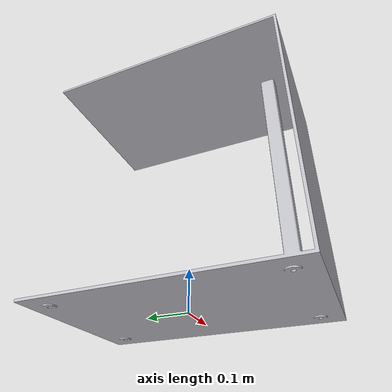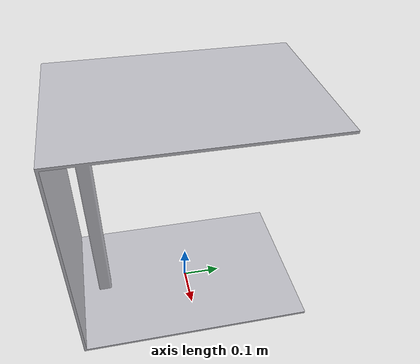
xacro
<?xml version="1.0" ?>
<robot name="frame" xmlns:xacro="http://www.ros.org/wiki/xacro">

<xacro:include filename="$(find frame_description)/urdf/materials.xacro" />
<xacro:include filename="$(find frame_description)/urdf/frame.trans" />
<xacro:include filename="$(find frame_description)/urdf/frame.gazebo" />
<link name="base_link">
  <inertial>
    <origin xyz="-6.087905556432197e-16 -0.11865332545839843 0.3025677116810472" rpy="0 0 0"/>
    <mass value="5.258658040215876"/>
    <inertia ixx="0.524098" iyy="0.393335" izz="0.252305" ixy="-0.0" iyz="0.000263" ixz="-0.0"/>
  </inertial>
  <visual>
    <origin xyz="0 0 0" rpy="0 0 0"/>
    <geometry>
      <mesh filename="file://$(find frame_description)/meshes/base_link.stl" scale="0.001 0.001 0.001"/>
    </geometry>
    <material name="silver"/>
  </visual>
  <collision>
    <origin xyz="0 0 0" rpy="0 0 0"/>
    <geometry>
      <mesh filename="file://$(find frame_description)/meshes/base_link.stl" scale="0.001 0.001 0.001"/>
    </geometry>
  </collision>
</link>

</robot>

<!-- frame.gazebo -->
<robot name="frame" xmlns:xacro="http://www.ros.org/wiki/xacro" >

<xacro:property name="body_color" value="Gazebo/Silver" />

<gazebo>
  <plugin name="control" filename="libgazebo_ros_control.so"/>
</gazebo>
<gazebo reference="base_link">
  <material>${body_color}</material>
  <mu1>0.2</mu1>
  <mu2>0.2</mu2>
  <self_collide>true</self_collide>
  <gravity>true</gravity>
</gazebo>

</robot>
